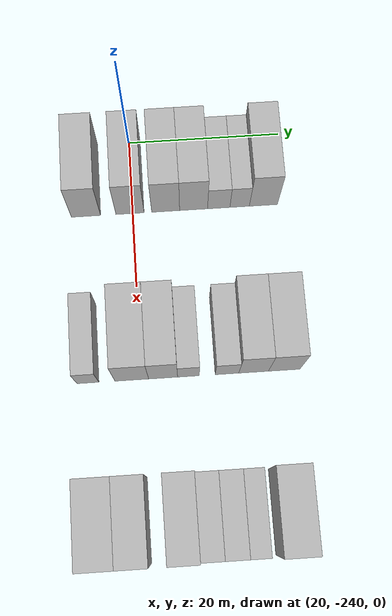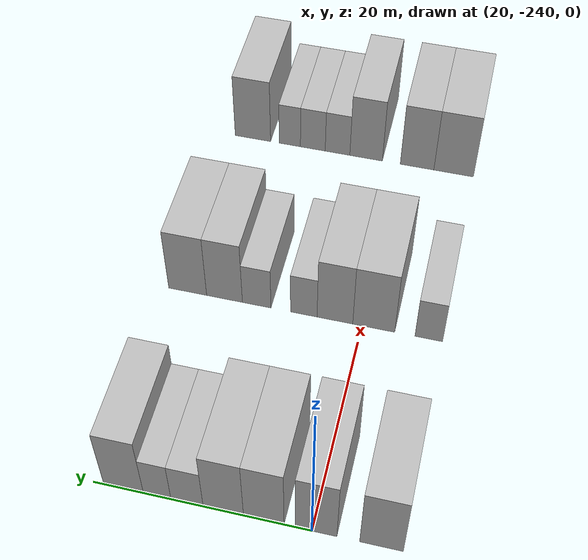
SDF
<sdf version="1.6">
 <world name="default">
  <model name="building_1">
   <static>1</static>
   <pose>25.0000 -246.0928 0 0.000000 0.000000 0.000000</pose>
   <link name="link">
    <pose>0 0 4.50 0 0 0</pose>
    <collision name="collision"><geometry><box><size>10.0000 3.8145 9.0000</size></box></geometry></collision>
    <visual name="visual">
     <cast_shadows>0</cast_shadows>
     <geometry><box><size>10.0000 3.8145 9.0000</size></box></geometry>
     <material>
      <script>
       <uri>model://HANNAS_wall/materials/scripts</uri>
       <uri>model://HANNAS_wall/materials/textures</uri>
       <name>vrc/HANNAS_wall</name>
      </script>
     </material>
    </visual>
   </link>
  </model>
  <model name="building_2">
   <static>1</static>
   <pose>25.0000 -240.3374 0 0.000000 0.000000 0.000000</pose>
   <link name="link">
    <pose>0 0 4.50 0 0 0</pose>
    <collision name="collision"><geometry><box><size>10.0000 3.6962 9.0000</size></box></geometry></collision>
    <visual name="visual">
     <cast_shadows>0</cast_shadows>
     <geometry><box><size>10.0000 3.6962 9.0000</size></box></geometry>
     <material>
      <script>
       <uri>model://HANNAS_wall/materials/scripts</uri>
       <uri>model://HANNAS_wall/materials/textures</uri>
       <name>vrc/HANNAS_wall</name>
      </script>
     </material>
    </visual>
   </link>
  </model>
  <model name="building_3">
   <static>1</static>
   <pose>25.0000 -235.6657 0 0.000000 0.000000 0.000000</pose>
   <link name="link">
    <pose>0 0 4.50 0 0 0</pose>
    <collision name="collision"><geometry><box><size>10.0000 3.6471 9.0000</size></box></geometry></collision>
    <visual name="visual">
     <cast_shadows>0</cast_shadows>
     <geometry><box><size>10.0000 3.6471 9.0000</size></box></geometry>
     <material>
      <script>
       <uri>model://HANNAS_wall/materials/scripts</uri>
       <uri>model://HANNAS_wall/materials/textures</uri>
       <name>vrc/HANNAS_wall</name>
      </script>
     </material>
    </visual>
   </link>
  </model>
  <model name="building_4">
   <static>1</static>
   <pose>25.0000 -232.0111 0 0.000000 0.000000 0.000000</pose>
   <link name="link">
    <pose>0 0 4.50 0 0 0</pose>
    <collision name="collision"><geometry><box><size>10.0000 3.6621 9.0000</size></box></geometry></collision>
    <visual name="visual">
     <cast_shadows>0</cast_shadows>
     <geometry><box><size>10.0000 3.6621 9.0000</size></box></geometry>
     <material>
      <script>
       <uri>model://HANNAS_wall/materials/scripts</uri>
       <uri>model://HANNAS_wall/materials/textures</uri>
       <name>vrc/HANNAS_wall</name>
      </script>
     </material>
    </visual>
   </link>
  </model>
  <model name="building_5">
   <static>1</static>
   <pose>25.0000 -228.7073 0 0.000000 0.000000 0.000000</pose>
   <link name="link">
    <pose>0 0 3.00 0 0 0</pose>
    <collision name="collision"><geometry><box><size>10.0000 2.9455 6.0000</size></box></geometry></collision>
    <visual name="visual">
     <cast_shadows>0</cast_shadows>
     <geometry><box><size>10.0000 2.9455 6.0000</size></box></geometry>
     <material>
      <script>
       <uri>model://HANNAS_wall/materials/scripts</uri>
       <uri>model://HANNAS_wall/materials/textures</uri>
       <name>vrc/HANNAS_wall</name>
      </script>
     </material>
    </visual>
   </link>
  </model>
  <model name="building_6">
   <static>1</static>
   <pose>25.0000 -225.9592 0 0.000000 0.000000 0.000000</pose>
   <link name="link">
    <pose>0 0 3.00 0 0 0</pose>
    <collision name="collision"><geometry><box><size>10.0000 2.5508 6.0000</size></box></geometry></collision>
    <visual name="visual">
     <cast_shadows>0</cast_shadows>
     <geometry><box><size>10.0000 2.5508 6.0000</size></box></geometry>
     <material>
      <script>
       <uri>model://HANNAS_wall/materials/scripts</uri>
       <uri>model://HANNAS_wall/materials/textures</uri>
       <name>vrc/HANNAS_wall</name>
      </script>
     </material>
    </visual>
   </link>
  </model>
  <model name="building_7">
   <static>1</static>
   <pose>25.0000 -222.8356 0 0.000000 0.000000 0.000000</pose>
   <link name="link">
    <pose>0 0 4.50 0 0 0</pose>
    <collision name="collision"><geometry><box><size>10.0000 3.6965 9.0000</size></box></geometry></collision>
    <visual name="visual">
     <cast_shadows>0</cast_shadows>
     <geometry><box><size>10.0000 3.6965 9.0000</size></box></geometry>
     <material>
      <script>
       <uri>model://HANNAS_wall/materials/scripts</uri>
       <uri>model://HANNAS_wall/materials/textures</uri>
       <name>vrc/HANNAS_wall</name>
      </script>
     </material>
    </visual>
   </link>
  </model>
  <model name="building_118">
   <static>1</static>
   <pose>47.0000 -246.6379 0 0.000000 0.000000 0.000000</pose>
   <link name="link">
    <pose>0 0 3.00 0 0 0</pose>
    <collision name="collision"><geometry><box><size>10.0000 2.7242 6.0000</size></box></geometry></collision>
    <visual name="visual">
     <cast_shadows>0</cast_shadows>
     <geometry><box><size>10.0000 2.7242 6.0000</size></box></geometry>
     <material>
      <script>
       <uri>model://HANNAS_wall/materials/scripts</uri>
       <uri>model://HANNAS_wall/materials/textures</uri>
       <name>vrc/HANNAS_wall</name>
      </script>
     </material>
    </visual>
   </link>
  </model>
  <model name="building_119">
   <static>1</static>
   <pose>47.0000 -241.1770 0 0.000000 0.000000 0.000000</pose>
   <link name="link">
    <pose>0 0 4.50 0 0 0</pose>
    <collision name="collision"><geometry><box><size>10.0000 4.1976 9.0000</size></box></geometry></collision>
    <visual name="visual">
     <cast_shadows>0</cast_shadows>
     <geometry><box><size>10.0000 4.1976 9.0000</size></box></geometry>
     <material>
      <script>
       <uri>model://HANNAS_wall/materials/scripts</uri>
       <uri>model://HANNAS_wall/materials/textures</uri>
       <name>vrc/HANNAS_wall</name>
      </script>
     </material>
    </visual>
   </link>
  </model>
  <model name="building_120">
   <static>1</static>
   <pose>47.0000 -237.2765 0 0.000000 0.000000 0.000000</pose>
   <link name="link">
    <pose>0 0 4.50 0 0 0</pose>
    <collision name="collision"><geometry><box><size>10.0000 3.6033 9.0000</size></box></geometry></collision>
    <visual name="visual">
     <cast_shadows>0</cast_shadows>
     <geometry><box><size>10.0000 3.6033 9.0000</size></box></geometry>
     <material>
      <script>
       <uri>model://HANNAS_wall/materials/scripts</uri>
       <uri>model://HANNAS_wall/materials/textures</uri>
       <name>vrc/HANNAS_wall</name>
      </script>
     </material>
    </visual>
   </link>
  </model>
  <model name="building_121">
   <static>1</static>
   <pose>47.0000 -234.1276 0 0.000000 0.000000 0.000000</pose>
   <link name="link">
    <pose>0 0 3.00 0 0 0</pose>
    <collision name="collision"><geometry><box><size>10.0000 2.6944 6.0000</size></box></geometry></collision>
    <visual name="visual">
     <cast_shadows>0</cast_shadows>
     <geometry><box><size>10.0000 2.6944 6.0000</size></box></geometry>
     <material>
      <script>
       <uri>model://HANNAS_wall/materials/scripts</uri>
       <uri>model://HANNAS_wall/materials/textures</uri>
       <name>vrc/HANNAS_wall</name>
      </script>
     </material>
    </visual>
   </link>
  </model>
  <model name="building_122">
   <static>1</static>
   <pose>47.0000 -229.3101 0 0.000000 0.000000 0.000000</pose>
   <link name="link">
    <pose>0 0 3.00 0 0 0</pose>
    <collision name="collision"><geometry><box><size>10.0000 2.9406 6.0000</size></box></geometry></collision>
    <visual name="visual">
     <cast_shadows>0</cast_shadows>
     <geometry><box><size>10.0000 2.9406 6.0000</size></box></geometry>
     <material>
      <script>
       <uri>model://HANNAS_wall/materials/scripts</uri>
       <uri>model://HANNAS_wall/materials/textures</uri>
       <name>vrc/HANNAS_wall</name>
      </script>
     </material>
    </visual>
   </link>
  </model>
  <model name="building_123">
   <static>1</static>
   <pose>47.0000 -225.9829 0 0.000000 0.000000 0.000000</pose>
   <link name="link">
    <pose>0 0 4.50 0 0 0</pose>
    <collision name="collision"><geometry><box><size>10.0000 3.7139 9.0000</size></box></geometry></collision>
    <visual name="visual">
     <cast_shadows>0</cast_shadows>
     <geometry><box><size>10.0000 3.7139 9.0000</size></box></geometry>
     <material>
      <script>
       <uri>model://HANNAS_wall/materials/scripts</uri>
       <uri>model://HANNAS_wall/materials/textures</uri>
       <name>vrc/HANNAS_wall</name>
      </script>
     </material>
    </visual>
   </link>
  </model>
  <model name="building_124">
   <static>1</static>
   <pose>47.0000 -222.1419 0 0.000000 0.000000 0.000000</pose>
   <link name="link">
    <pose>0 0 4.50 0 0 0</pose>
    <collision name="collision"><geometry><box><size>10.0000 3.9681 9.0000</size></box></geometry></collision>
    <visual name="visual">
     <cast_shadows>0</cast_shadows>
     <geometry><box><size>10.0000 3.9681 9.0000</size></box></geometry>
     <material>
      <script>
       <uri>model://HANNAS_wall/materials/scripts</uri>
       <uri>model://HANNAS_wall/materials/textures</uri>
       <name>vrc/HANNAS_wall</name>
      </script>
     </material>
    </visual>
   </link>
  </model>
  <model name="building_225">
   <static>1</static>
   <pose>69.0000 -245.8222 0 0.000000 0.000000 0.000000</pose>
   <link name="link">
    <pose>0 0 4.50 0 0 0</pose>
    <collision name="collision"><geometry><box><size>10.0000 4.3555 9.0000</size></box></geometry></collision>
    <visual name="visual">
     <cast_shadows>0</cast_shadows>
     <geometry><box><size>10.0000 4.3555 9.0000</size></box></geometry>
     <material>
      <script>
       <uri>model://HANNAS_wall/materials/scripts</uri>
       <uri>model://HANNAS_wall/materials/textures</uri>
       <name>vrc/HANNAS_wall</name>
      </script>
     </material>
    </visual>
   </link>
  </model>
  <model name="building_226">
   <static>1</static>
   <pose>69.0000 -241.7785 0 0.000000 0.000000 0.000000</pose>
   <link name="link">
    <pose>0 0 4.50 0 0 0</pose>
    <collision name="collision"><geometry><box><size>10.0000 3.7319 9.0000</size></box></geometry></collision>
    <visual name="visual">
     <cast_shadows>0</cast_shadows>
     <geometry><box><size>10.0000 3.7319 9.0000</size></box></geometry>
     <material>
      <script>
       <uri>model://HANNAS_wall/materials/scripts</uri>
       <uri>model://HANNAS_wall/materials/textures</uri>
       <name>vrc/HANNAS_wall</name>
      </script>
     </material>
    </visual>
   </link>
  </model>
  <model name="building_227">
   <static>1</static>
   <pose>69.0000 -236.0793 0 0.000000 0.000000 0.000000</pose>
   <link name="link">
    <pose>0 0 4.50 0 0 0</pose>
    <collision name="collision"><geometry><box><size>10.0000 3.6665 9.0000</size></box></geometry></collision>
    <visual name="visual">
     <cast_shadows>0</cast_shadows>
     <geometry><box><size>10.0000 3.6665 9.0000</size></box></geometry>
     <material>
      <script>
       <uri>model://HANNAS_wall/materials/scripts</uri>
       <uri>model://HANNAS_wall/materials/textures</uri>
       <name>vrc/HANNAS_wall</name>
      </script>
     </material>
    </visual>
   </link>
  </model>
  <model name="building_228">
   <static>1</static>
   <pose>69.0000 -232.8501 0 0.000000 0.000000 0.000000</pose>
   <link name="link">
    <pose>0 0 3.00 0 0 0</pose>
    <collision name="collision"><geometry><box><size>10.0000 2.7920 6.0000</size></box></geometry></collision>
    <visual name="visual">
     <cast_shadows>0</cast_shadows>
     <geometry><box><size>10.0000 2.7920 6.0000</size></box></geometry>
     <material>
      <script>
       <uri>model://HANNAS_wall/materials/scripts</uri>
       <uri>model://HANNAS_wall/materials/textures</uri>
       <name>vrc/HANNAS_wall</name>
      </script>
     </material>
    </visual>
   </link>
  </model>
  <model name="building_229">
   <static>1</static>
   <pose>69.0000 -230.0400 0 0.000000 0.000000 0.000000</pose>
   <link name="link">
    <pose>0 0 3.00 0 0 0</pose>
    <collision name="collision"><geometry><box><size>10.0000 2.8282 6.0000</size></box></geometry></collision>
    <visual name="visual">
     <cast_shadows>0</cast_shadows>
     <geometry><box><size>10.0000 2.8282 6.0000</size></box></geometry>
     <material>
      <script>
       <uri>model://HANNAS_wall/materials/scripts</uri>
       <uri>model://HANNAS_wall/materials/textures</uri>
       <name>vrc/HANNAS_wall</name>
      </script>
     </material>
    </visual>
   </link>
  </model>
  <model name="building_230">
   <static>1</static>
   <pose>69.0000 -227.4124 0 0.000000 0.000000 0.000000</pose>
   <link name="link">
    <pose>0 0 3.00 0 0 0</pose>
    <collision name="collision"><geometry><box><size>10.0000 2.4270 6.0000</size></box></geometry></collision>
    <visual name="visual">
     <cast_shadows>0</cast_shadows>
     <geometry><box><size>10.0000 2.4270 6.0000</size></box></geometry>
     <material>
      <script>
       <uri>model://HANNAS_wall/materials/scripts</uri>
       <uri>model://HANNAS_wall/materials/textures</uri>
       <name>vrc/HANNAS_wall</name>
      </script>
     </material>
    </visual>
   </link>
  </model>
  <model name="building_231">
   <static>1</static>
   <pose>69.0000 -223.1530 0 0.000000 0.000000 0.000000</pose>
   <link name="link">
    <pose>0 0 4.50 0 0 0</pose>
    <collision name="collision"><geometry><box><size>10.0000 4.0917 9.0000</size></box></geometry></collision>
    <visual name="visual">
     <cast_shadows>0</cast_shadows>
     <geometry><box><size>10.0000 4.0917 9.0000</size></box></geometry>
     <material>
      <script>
       <uri>model://HANNAS_wall/materials/scripts</uri>
       <uri>model://HANNAS_wall/materials/textures</uri>
       <name>vrc/HANNAS_wall</name>
      </script>
     </material>
    </visual>
   </link>
  </model>
 </world>
</sdf>
